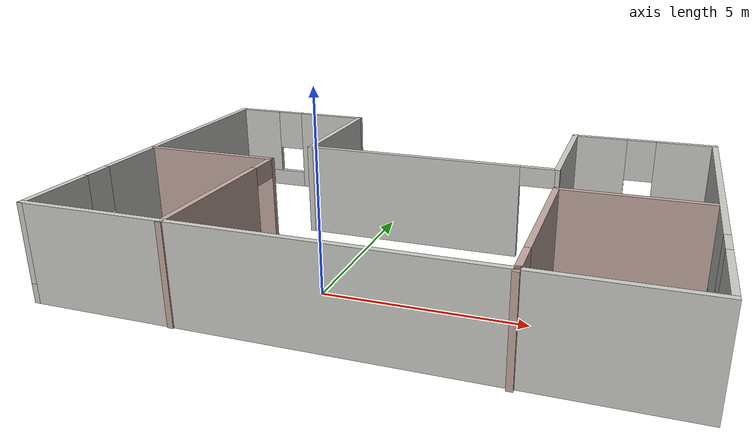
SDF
<?xml version='1.0'?>
<sdf version='1.6'>
  <model name='model'>
    <pose frame=''>1.32037 2.38187 0 0 -0 0</pose>
    <link name='Wall_1'>
      <pose frame=''>-7.425 0.045582 0 0 0 -1.5708</pose>
      <visual name='Wall_1_Visual_0'>
        <pose frame=''>-1.46661 0 1.25 0 -0 0</pose>
        <geometry>
          <box>
            <size>7.06677 0.15 2.5</size>
          </box>
        </geometry>
        <material>
          <script>
            <uri>file://media/materials/scripts/gazebo.material</uri>
            <name>Gazebo/CeilingTiled</name>
          </script>
          <ambient>1 1 1 1</ambient>
        </material>
        <meta>
          <layer>0</layer>
        </meta>
      </visual>
      <collision name='Wall_1_Collision_0'>
        <geometry>
          <box>
            <size>7.06677 0.15 2.5</size>
          </box>
        </geometry>
        <pose frame=''>-1.46661 0 1.25 0 -0 0</pose>
      </collision>
      <visual name='Wall_1_Visual_1'>
        <pose frame=''>3.53339 0 0.25 0 -0 0</pose>
        <geometry>
          <box>
            <size>2.93323 0.15 0.5</size>
          </box>
        </geometry>
        <material>
          <script>
            <uri>file://media/materials/scripts/gazebo.material</uri>
            <name>Gazebo/CeilingTiled</name>
          </script>
          <ambient>1 1 1 1</ambient>
        </material>
        <meta>
          <layer>0</layer>
        </meta>
      </visual>
      <collision name='Wall_1_Collision_1'>
        <geometry>
          <box>
            <size>2.93323 0.15 0.5</size>
          </box>
        </geometry>
        <pose frame=''>3.53339 0 0.25 0 -0 0</pose>
      </collision>
      <visual name='Wall_1_Visual_2'>
        <pose frame=''>3.93339 0 1.5 0 -0 0</pose>
        <geometry>
          <box>
            <size>2.13323 0.15 2</size>
          </box>
        </geometry>
        <material>
          <script>
            <uri>file://media/materials/scripts/gazebo.material</uri>
            <name>Gazebo/CeilingTiled</name>
          </script>
          <ambient>1 1 1 1</ambient>
        </material>
        <meta>
          <layer>0</layer>
        </meta>
      </visual>
      <collision name='Wall_1_Collision_2'>
        <geometry>
          <box>
            <size>2.13323 0.15 2</size>
          </box>
        </geometry>
        <pose frame=''>3.93339 0 1.5 0 -0 0</pose>
      </collision>
      <visual name='Wall_1_Visual_3'>
        <pose frame=''>2.46677 0 1.9 0 -0 0</pose>
        <geometry>
          <box>
            <size>0.8 0.15 1.2</size>
          </box>
        </geometry>
        <material>
          <script>
            <uri>file://media/materials/scripts/gazebo.material</uri>
            <name>Gazebo/CeilingTiled</name>
          </script>
          <ambient>1 1 1 1</ambient>
        </material>
        <meta>
          <layer>0</layer>
        </meta>
      </visual>
      <collision name='Wall_1_Collision_3'>
        <geometry>
          <box>
            <size>0.8 0.15 1.2</size>
          </box>
        </geometry>
        <pose frame=''>2.46677 0 1.9 0 -0 0</pose>
      </collision>
    </link>
    <link name='Wall_10'>
      <collision name='Wall_10_Collision'>
        <geometry>
          <box>
            <size>3.75 0.15 2.5</size>
          </box>
        </geometry>
        <pose frame=''>0 0 1.25 0 -0 0</pose>
      </collision>
      <visual name='Wall_10_Visual'>
        <pose frame=''>0 0 1.25 0 -0 0</pose>
        <geometry>
          <box>
            <size>3.75 0.15 2.5</size>
          </box>
        </geometry>
        <material>
          <script>
            <uri>file://media/materials/scripts/gazebo.material</uri>
            <name>Gazebo/Grey</name>
          </script>
          <ambient>0.760784 0.662745 0.627451 1</ambient>
        </material>
        <meta>
          <layer>0</layer>
        </meta>
      </visual>
      <pose frame=''>-5.57831 -0.067079 0 0 -0 0</pose>
    </link>
    <link name='Wall_11'>
      <pose frame=''>-3.77832 -2.49208 0 0 0 -1.5708</pose>
      <visual name='Wall_11_Visual_0'>
        <pose frame=''>-2.47349 0 1.25 0 -0 0</pose>
        <geometry>
          <box>
            <size>0.05302 0.15 2.5</size>
          </box>
        </geometry>
        <material>
          <script>
            <uri>file://media/materials/scripts/gazebo.material</uri>
            <name>Gazebo/Grey</name>
          </script>
          <ambient>0.760784 0.662745 0.627451 1</ambient>
        </material>
        <meta>
          <layer>0</layer>
        </meta>
      </visual>
      <collision name='Wall_11_Collision_0'>
        <geometry>
          <box>
            <size>0.05302 0.15 2.5</size>
          </box>
        </geometry>
        <pose frame=''>-2.47349 0 1.25 0 -0 0</pose>
      </collision>
      <visual name='Wall_11_Visual_1'>
        <pose frame=''>0.47651 0 1.25 0 -0 0</pose>
        <geometry>
          <box>
            <size>4.04698 0.15 2.5</size>
          </box>
        </geometry>
        <material>
          <script>
            <uri>file://media/materials/scripts/gazebo.material</uri>
            <name>Gazebo/Grey</name>
          </script>
          <ambient>0.760784 0.662745 0.627451 1</ambient>
        </material>
        <meta>
          <layer>0</layer>
        </meta>
      </visual>
      <collision name='Wall_11_Collision_1'>
        <geometry>
          <box>
            <size>4.04698 0.15 2.5</size>
          </box>
        </geometry>
        <pose frame=''>0.47651 0 1.25 0 -0 0</pose>
      </collision>
      <visual name='Wall_11_Visual_2'>
        <pose frame=''>-1.99698 0 2.25 0 -0 0</pose>
        <geometry>
          <box>
            <size>0.9 0.15 0.5</size>
          </box>
        </geometry>
        <material>
          <script>
            <uri>file://media/materials/scripts/gazebo.material</uri>
            <name>Gazebo/Grey</name>
          </script>
          <ambient>0.760784 0.662745 0.627451 1</ambient>
        </material>
        <meta>
          <layer>0</layer>
        </meta>
      </visual>
      <collision name='Wall_11_Collision_2'>
        <geometry>
          <box>
            <size>0.9 0.15 0.5</size>
          </box>
        </geometry>
        <pose frame=''>-1.99698 0 2.25 0 -0 0</pose>
      </collision>
    </link>
    <link name='Wall_13'>
      <collision name='Wall_13_Collision'>
        <geometry>
          <box>
            <size>3.75 0.15 2.5</size>
          </box>
        </geometry>
        <pose frame=''>0 0 1.25 0 -0 0</pose>
      </collision>
      <visual name='Wall_13_Visual'>
        <pose frame=''>0 0 1.25 0 -0 0</pose>
        <geometry>
          <box>
            <size>3.75 0.15 2.5</size>
          </box>
        </geometry>
        <material>
          <script>
            <uri>file://media/materials/scripts/gazebo.material</uri>
            <name>Gazebo/Grey</name>
          </script>
          <ambient>0.760784 0.662745 0.627451 1</ambient>
        </material>
        <meta>
          <layer>0</layer>
        </meta>
      </visual>
      <pose frame=''>5.56162 -0.120582 0 0 -0 3.14159</pose>
    </link>
    <link name='Wall_14'>
      <pose frame=''>3.76162 -2.54558 0 0 0 -1.5708</pose>
      <visual name='Wall_14_Visual_0'>
        <pose frame=''>-0.587527 0 1.25 0 -0 0</pose>
        <geometry>
          <box>
            <size>3.82495 0.15 2.5</size>
          </box>
        </geometry>
        <material>
          <script>
            <uri>file://media/materials/scripts/gazebo.material</uri>
            <name>Gazebo/Grey</name>
          </script>
          <ambient>0.760784 0.662745 0.627451 1</ambient>
        </material>
        <meta>
          <layer>0</layer>
        </meta>
      </visual>
      <collision name='Wall_14_Collision_0'>
        <geometry>
          <box>
            <size>3.82495 0.15 2.5</size>
          </box>
        </geometry>
        <pose frame=''>-0.587527 0 1.25 0 -0 0</pose>
      </collision>
      <visual name='Wall_14_Visual_1'>
        <pose frame=''>2.36247 0 1.25 0 -0 0</pose>
        <geometry>
          <box>
            <size>0.275054 0.15 2.5</size>
          </box>
        </geometry>
        <material>
          <script>
            <uri>file://media/materials/scripts/gazebo.material</uri>
            <name>Gazebo/Grey</name>
          </script>
          <ambient>0.760784 0.662745 0.627451 1</ambient>
        </material>
        <meta>
          <layer>0</layer>
        </meta>
      </visual>
      <collision name='Wall_14_Collision_1'>
        <geometry>
          <box>
            <size>0.275054 0.15 2.5</size>
          </box>
        </geometry>
        <pose frame=''>2.36247 0 1.25 0 -0 0</pose>
      </collision>
      <visual name='Wall_14_Visual_2'>
        <pose frame=''>1.77495 0 2.25 0 -0 0</pose>
        <geometry>
          <box>
            <size>0.9 0.15 0.5</size>
          </box>
        </geometry>
        <material>
          <script>
            <uri>file://media/materials/scripts/gazebo.material</uri>
            <name>Gazebo/Grey</name>
          </script>
          <ambient>0.760784 0.662745 0.627451 1</ambient>
        </material>
        <meta>
          <layer>0</layer>
        </meta>
      </visual>
      <collision name='Wall_14_Collision_2'>
        <geometry>
          <box>
            <size>0.9 0.15 0.5</size>
          </box>
        </geometry>
        <pose frame=''>1.77495 0 2.25 0 -0 0</pose>
      </collision>
    </link>
    <link name='Wall_2'>
      <collision name='Wall_2_Collision'>
        <geometry>
          <box>
            <size>15 0.15 2.5</size>
          </box>
        </geometry>
        <pose frame=''>0 0 1.25 0 -0 0</pose>
      </collision>
      <visual name='Wall_2_Visual'>
        <pose frame=''>0 0 1.25 0 -0 0</pose>
        <geometry>
          <box>
            <size>15 0.15 2.5</size>
          </box>
        </geometry>
        <material>
          <script>
            <uri>file://media/materials/scripts/gazebo.material</uri>
            <name>Gazebo/CeilingTiled</name>
          </script>
          <ambient>1 1 1 1</ambient>
        </material>
        <meta>
          <layer>0</layer>
        </meta>
      </visual>
      <pose frame=''>0 -4.87942 0 0 -0 0</pose>
    </link>
    <link name='Wall_3'>
      <pose frame=''>7.425 0.045582 0 0 -0 1.5708</pose>
      <visual name='Wall_3_Visual_0'>
        <pose frame=''>-3.89326 0 1.25 0 -0 0</pose>
        <geometry>
          <box>
            <size>2.21348 0.15 2.5</size>
          </box>
        </geometry>
        <material>
          <script>
            <uri>file://media/materials/scripts/gazebo.material</uri>
            <name>Gazebo/CeilingTiled</name>
          </script>
          <ambient>1 1 1 1</ambient>
        </material>
        <meta>
          <layer>0</layer>
        </meta>
      </visual>
      <collision name='Wall_3_Collision_0'>
        <geometry>
          <box>
            <size>2.21348 0.15 2.5</size>
          </box>
        </geometry>
        <pose frame=''>-3.89326 0 1.25 0 -0 0</pose>
      </collision>
      <visual name='Wall_3_Visual_1'>
        <pose frame=''>1.10674 0 0.25 0 -0 0</pose>
        <geometry>
          <box>
            <size>7.78652 0.15 0.5</size>
          </box>
        </geometry>
        <material>
          <script>
            <uri>file://media/materials/scripts/gazebo.material</uri>
            <name>Gazebo/CeilingTiled</name>
          </script>
          <ambient>1 1 1 1</ambient>
        </material>
        <meta>
          <layer>0</layer>
        </meta>
      </visual>
      <collision name='Wall_3_Collision_1'>
        <geometry>
          <box>
            <size>7.78652 0.15 0.5</size>
          </box>
        </geometry>
        <pose frame=''>1.10674 0 0.25 0 -0 0</pose>
      </collision>
      <visual name='Wall_3_Visual_2'>
        <pose frame=''>1.50674 0 1.5 0 -0 0</pose>
        <geometry>
          <box>
            <size>6.98652 0.15 2</size>
          </box>
        </geometry>
        <material>
          <script>
            <uri>file://media/materials/scripts/gazebo.material</uri>
            <name>Gazebo/CeilingTiled</name>
          </script>
          <ambient>1 1 1 1</ambient>
        </material>
        <meta>
          <layer>0</layer>
        </meta>
      </visual>
      <collision name='Wall_3_Collision_2'>
        <geometry>
          <box>
            <size>6.98652 0.15 2</size>
          </box>
        </geometry>
        <pose frame=''>1.50674 0 1.5 0 -0 0</pose>
      </collision>
      <visual name='Wall_3_Visual_3'>
        <pose frame=''>-2.38652 0 1.9 0 -0 0</pose>
        <geometry>
          <box>
            <size>0.8 0.15 1.2</size>
          </box>
        </geometry>
        <material>
          <script>
            <uri>file://media/materials/scripts/gazebo.material</uri>
            <name>Gazebo/CeilingTiled</name>
          </script>
          <ambient>1 1 1 1</ambient>
        </material>
        <meta>
          <layer>0</layer>
        </meta>
      </visual>
      <collision name='Wall_3_Collision_3'>
        <geometry>
          <box>
            <size>0.8 0.15 1.2</size>
          </box>
        </geometry>
        <pose frame=''>-2.38652 0 1.9 0 -0 0</pose>
      </collision>
    </link>
    <link name='Wall_4'>
      <pose frame=''>5.5 4.97058 0 0 -0 3.14159</pose>
      <visual name='Wall_4_Visual_0'>
        <pose frame=''>-1.18114 0 1.25 0 -0 0</pose>
        <geometry>
          <box>
            <size>1.63771 0.15 2.5</size>
          </box>
        </geometry>
        <material>
          <script>
            <uri>file://media/materials/scripts/gazebo.material</uri>
            <name>Gazebo/CeilingTiled</name>
          </script>
          <ambient>1 1 1 1</ambient>
        </material>
        <meta>
          <layer>0</layer>
        </meta>
      </visual>
      <collision name='Wall_4_Collision_0'>
        <geometry>
          <box>
            <size>1.63771 0.15 2.5</size>
          </box>
        </geometry>
        <pose frame=''>-1.18114 0 1.25 0 -0 0</pose>
      </collision>
      <visual name='Wall_4_Visual_1'>
        <pose frame=''>0.818857 0 0.25 0 -0 0</pose>
        <geometry>
          <box>
            <size>2.36229 0.15 0.5</size>
          </box>
        </geometry>
        <material>
          <script>
            <uri>file://media/materials/scripts/gazebo.material</uri>
            <name>Gazebo/CeilingTiled</name>
          </script>
          <ambient>1 1 1 1</ambient>
        </material>
        <meta>
          <layer>0</layer>
        </meta>
      </visual>
      <collision name='Wall_4_Collision_1'>
        <geometry>
          <box>
            <size>2.36229 0.15 0.5</size>
          </box>
        </geometry>
        <pose frame=''>0.818857 0 0.25 0 -0 0</pose>
      </collision>
      <visual name='Wall_4_Visual_2'>
        <pose frame=''>1.21886 0 1.5 0 -0 0</pose>
        <geometry>
          <box>
            <size>1.56229 0.15 2</size>
          </box>
        </geometry>
        <material>
          <script>
            <uri>file://media/materials/scripts/gazebo.material</uri>
            <name>Gazebo/CeilingTiled</name>
          </script>
          <ambient>1 1 1 1</ambient>
        </material>
        <meta>
          <layer>0</layer>
        </meta>
      </visual>
      <collision name='Wall_4_Collision_2'>
        <geometry>
          <box>
            <size>1.56229 0.15 2</size>
          </box>
        </geometry>
        <pose frame=''>1.21886 0 1.5 0 -0 0</pose>
      </collision>
      <visual name='Wall_4_Visual_3'>
        <pose frame=''>0.037714 0 1.9 0 -0 0</pose>
        <geometry>
          <box>
            <size>0.8 0.15 1.2</size>
          </box>
        </geometry>
        <material>
          <script>
            <uri>file://media/materials/scripts/gazebo.material</uri>
            <name>Gazebo/CeilingTiled</name>
          </script>
          <ambient>1 1 1 1</ambient>
        </material>
        <meta>
          <layer>0</layer>
        </meta>
      </visual>
      <collision name='Wall_4_Collision_3'>
        <geometry>
          <box>
            <size>0.8 0.15 1.2</size>
          </box>
        </geometry>
        <pose frame=''>0.037714 0 1.9 0 -0 0</pose>
      </collision>
    </link>
    <link name='Wall_5'>
      <collision name='Wall_5_Collision'>
        <geometry>
          <box>
            <size>3.75 0.15 2.5</size>
          </box>
        </geometry>
        <pose frame=''>0 0 1.25 0 -0 0</pose>
      </collision>
      <visual name='Wall_5_Visual'>
        <pose frame=''>0 0 1.25 0 -0 0</pose>
        <geometry>
          <box>
            <size>3.75 0.15 2.5</size>
          </box>
        </geometry>
        <material>
          <script>
            <uri>file://media/materials/scripts/gazebo.material</uri>
            <name>Gazebo/CeilingTiled</name>
          </script>
          <ambient>1 1 1 1</ambient>
        </material>
        <meta>
          <layer>0</layer>
        </meta>
      </visual>
      <pose frame=''>3.575 3.17058 0 0 0 -1.5708</pose>
    </link>
    <link name='Wall_6'>
      <pose frame=''>0.15 1.37058 0 0 -0 3.14159</pose>
      <visual name='Wall_6_Visual_0'>
        <pose frame=''>-3.44071 0 1.25 0 -0 0</pose>
        <geometry>
          <box>
            <size>0.118576 0.15 2.5</size>
          </box>
        </geometry>
        <material>
          <script>
            <uri>file://media/materials/scripts/gazebo.material</uri>
            <name>Gazebo/CeilingTiled</name>
          </script>
          <ambient>1 1 1 1</ambient>
        </material>
        <meta>
          <layer>0</layer>
        </meta>
      </visual>
      <collision name='Wall_6_Collision_0'>
        <geometry>
          <box>
            <size>0.118576 0.15 2.5</size>
          </box>
        </geometry>
        <pose frame=''>-3.44071 0 1.25 0 -0 0</pose>
      </collision>
      <visual name='Wall_6_Visual_1'>
        <pose frame=''>0.509288 0 1.25 0 -0 0</pose>
        <geometry>
          <box>
            <size>5.98142 0.15 2.5</size>
          </box>
        </geometry>
        <material>
          <script>
            <uri>file://media/materials/scripts/gazebo.material</uri>
            <name>Gazebo/CeilingTiled</name>
          </script>
          <ambient>1 1 1 1</ambient>
        </material>
        <meta>
          <layer>0</layer>
        </meta>
      </visual>
      <collision name='Wall_6_Collision_1'>
        <geometry>
          <box>
            <size>5.98142 0.15 2.5</size>
          </box>
        </geometry>
        <pose frame=''>0.509288 0 1.25 0 -0 0</pose>
      </collision>
      <visual name='Wall_6_Visual_2'>
        <pose frame=''>-2.93142 0 2.25 0 -0 0</pose>
        <geometry>
          <box>
            <size>0.9 0.15 0.5</size>
          </box>
        </geometry>
        <material>
          <script>
            <uri>file://media/materials/scripts/gazebo.material</uri>
            <name>Gazebo/CeilingTiled</name>
          </script>
          <ambient>1 1 1 1</ambient>
        </material>
        <meta>
          <layer>0</layer>
        </meta>
      </visual>
      <collision name='Wall_6_Collision_2'>
        <geometry>
          <box>
            <size>0.9 0.15 0.5</size>
          </box>
        </geometry>
        <pose frame=''>-2.93142 0 2.25 0 -0 0</pose>
      </collision>
    </link>
    <link name='Wall_7'>
      <collision name='Wall_7_Collision'>
        <geometry>
          <box>
            <size>3.75 0.15 2.5</size>
          </box>
        </geometry>
        <pose frame=''>0 0 1.25 0 -0 0</pose>
      </collision>
      <visual name='Wall_7_Visual'>
        <pose frame=''>0 0 1.25 0 -0 0</pose>
        <geometry>
          <box>
            <size>3.75 0.15 2.5</size>
          </box>
        </geometry>
        <material>
          <script>
            <uri>file://media/materials/scripts/gazebo.material</uri>
            <name>Gazebo/CeilingTiled</name>
          </script>
          <ambient>1 1 1 1</ambient>
        </material>
        <meta>
          <layer>0</layer>
        </meta>
      </visual>
      <pose frame=''>-3.275 3.17058 0 0 -0 1.5708</pose>
    </link>
    <link name='Wall_8'>
      <pose frame=''>-5.35 4.97058 0 0 -0 3.14159</pose>
      <visual name='Wall_8_Visual_0'>
        <pose frame=''>-1.10351 0 1.25 0 -0 0</pose>
        <geometry>
          <box>
            <size>2.09299 0.15 2.5</size>
          </box>
        </geometry>
        <material>
          <script>
            <uri>file://media/materials/scripts/gazebo.material</uri>
            <name>Gazebo/CeilingTiled</name>
          </script>
          <ambient>1 1 1 1</ambient>
        </material>
        <meta>
          <layer>0</layer>
        </meta>
      </visual>
      <collision name='Wall_8_Collision_0'>
        <geometry>
          <box>
            <size>2.09299 0.15 2.5</size>
          </box>
        </geometry>
        <pose frame=''>-1.10351 0 1.25 0 -0 0</pose>
      </collision>
      <visual name='Wall_8_Visual_1'>
        <pose frame=''>1.04649 0 0.25 0 -0 0</pose>
        <geometry>
          <box>
            <size>2.20701 0.15 0.5</size>
          </box>
        </geometry>
        <material>
          <script>
            <uri>file://media/materials/scripts/gazebo.material</uri>
            <name>Gazebo/CeilingTiled</name>
          </script>
          <ambient>1 1 1 1</ambient>
        </material>
        <meta>
          <layer>0</layer>
        </meta>
      </visual>
      <collision name='Wall_8_Collision_1'>
        <geometry>
          <box>
            <size>2.20701 0.15 0.5</size>
          </box>
        </geometry>
        <pose frame=''>1.04649 0 0.25 0 -0 0</pose>
      </collision>
      <visual name='Wall_8_Visual_2'>
        <pose frame=''>1.44649 0 1.5 0 -0 0</pose>
        <geometry>
          <box>
            <size>1.40701 0.15 2</size>
          </box>
        </geometry>
        <material>
          <script>
            <uri>file://media/materials/scripts/gazebo.material</uri>
            <name>Gazebo/CeilingTiled</name>
          </script>
          <ambient>1 1 1 1</ambient>
        </material>
        <meta>
          <layer>0</layer>
        </meta>
      </visual>
      <collision name='Wall_8_Collision_2'>
        <geometry>
          <box>
            <size>1.40701 0.15 2</size>
          </box>
        </geometry>
        <pose frame=''>1.44649 0 1.5 0 -0 0</pose>
      </collision>
      <visual name='Wall_8_Visual_3'>
        <pose frame=''>0.342986 0 1.9 0 -0 0</pose>
        <geometry>
          <box>
            <size>0.8 0.15 1.2</size>
          </box>
        </geometry>
        <material>
          <script>
            <uri>file://media/materials/scripts/gazebo.material</uri>
            <name>Gazebo/CeilingTiled</name>
          </script>
          <ambient>1 1 1 1</ambient>
        </material>
        <meta>
          <layer>0</layer>
        </meta>
      </visual>
      <collision name='Wall_8_Collision_3'>
        <geometry>
          <box>
            <size>0.8 0.15 1.2</size>
          </box>
        </geometry>
        <pose frame=''>0.342986 0 1.9 0 -0 0</pose>
      </collision>
    </link>
    <static>1</static>
  </model>
</sdf>
